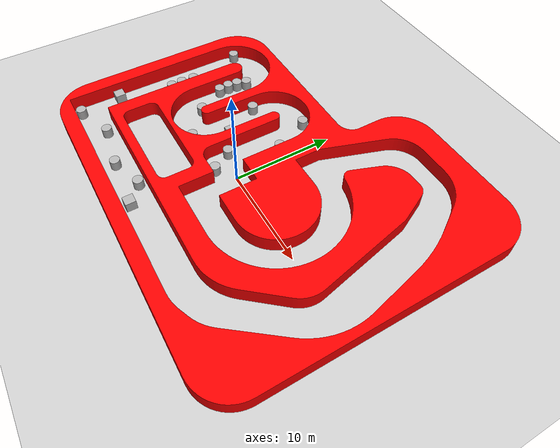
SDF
<sdf version="1.10">
 <world name="empty_world">
  <model name="ground_plane">
   <static>true</static>
   <link name="link">
    <collision name="collision">
     <geometry><plane><normal>0 0 1</normal><size>100 100</size></plane></geometry>
     <surface><friction><ode><mu>1</mu><mu2>1</mu2></ode></friction></surface>
    </collision>
    <visual name="visual">
     <geometry><plane><normal>0 0 1</normal><size>100 100</size></plane></geometry>
     <material>
      <ambient>0.800000012 0.800000012 0.800000012 1</ambient>
      <diffuse>0.800000012 0.800000012 0.800000012 1</diffuse>
      <specular>0.800000012 0.800000012 0.800000012 1</specular>
     </material>
    </visual>
    <inertial>
     <mass>1</mass>
     <inertia><ixx>1</ixx><ixy>0</ixy><ixz>0</ixz><iyy>1</iyy><iyz>0</iyz><izz>1</izz></inertia>
    </inertial>
   </link>
  </model>
  <model name="stl_maze">
   <static>true</static>
   <link name="link">
    <collision name="maze_collision">
     <geometry>
      <mesh>
       <uri>file:///home/juan-londono/Documents/mobileRobotics/mrad_ws_2602_Foxtrot/src/gazebo_2602_foxtrot/worlds/examen1_v2.stl</uri>
       <scale>0.0015 0.0015 0.001</scale>
      </mesh>
     </geometry>
    </collision>
    <visual name="visual">
     <geometry>
      <mesh>
       <uri>file:///home/juan-londono/Documents/mobileRobotics/mrad_ws_2602_Foxtrot/src/gazebo_2602_foxtrot/worlds/examen1_v2.stl</uri>
       <scale>0.0015 0.0015 0.001</scale>
      </mesh>
     </geometry>
     <material><ambient>1 0 0 1</ambient><diffuse>1 0 0 1</diffuse><specular>1 0 0 1</specular></material>
    </visual>
    <inertial>
     <mass>1</mass>
     <inertia><ixx>1</ixx><ixy>0</ixy><ixz>0</ixz><iyy>1</iyy><iyz>0</iyz><izz>1</izz></inertia>
    </inertial>
   </link>
  </model>
  <model name="cylinder">
   <pose>-15.312493324279785 -9.8559398651123047 0.49999899681693183 5.4237981933856964e-19 2.3181649937731231e-23 -1.4941080318111113e-20</pose>
   <link name="cylinder_link">
    <inertial>
     <inertia>
      <ixx>0.14580000000000001</ixx>
      <ixy>0</ixy>
      <ixz>0</ixz>
      <iyy>0.14580000000000001</iyy>
      <iyz>0</iyz>
      <izz>0.125</izz>
     </inertia>
     <mass>1</mass>
    </inertial>
    <collision name="cylinder_collision">
     <geometry><cylinder><radius>0.5</radius><length>1</length></cylinder></geometry>
    </collision>
    <visual name="cylinder_visual">
     <geometry><cylinder><radius>0.5</radius><length>1</length></cylinder></geometry>
     <material>
      <ambient>0.300000012 0.300000012 0.300000012 1</ambient>
      <diffuse>0.699999988 0.699999988 0.699999988 1</diffuse>
      <specular>1 1 1 1</specular>
     </material>
    </visual>
   </link>
   <static>true</static>
  </model>
  <model name="cylinder_0">
   <pose>-11.220121328600436 5.9150393099316156 0.49999943342976871 -1.3307943374031395e-08 5.3249000792590592e-09 0.24168083264871357</pose>
   <link name="cylinder_link">
    <inertial>
     <inertia>
      <ixx>0.14580000000000001</ixx>
      <ixy>0</ixy>
      <ixz>0</ixz>
      <iyy>0.14580000000000001</iyy>
      <iyz>0</iyz>
      <izz>0.125</izz>
     </inertia>
     <mass>1</mass>
    </inertial>
    <collision name="cylinder_collision">
     <geometry><cylinder><radius>0.5</radius><length>1</length></cylinder></geometry>
    </collision>
    <visual name="cylinder_visual">
     <geometry><cylinder><radius>0.5</radius><length>1</length></cylinder></geometry>
     <material>
      <ambient>0.300000012 0.300000012 0.300000012 1</ambient>
      <diffuse>0.699999988 0.699999988 0.699999988 1</diffuse>
      <specular>1 1 1 1</specular>
     </material>
    </visual>
   </link>
   <static>true</static>
  </model>
  <model name="cylinder_1">
   <pose>-14.309305706024755 2.2093379274785914 0.49999942638036005 3.0199189997714729e-19 2.6338621106579318e-19 -7.1983061060248519e-21</pose>
   <link name="cylinder_link">
    <inertial>
     <inertia>
      <ixx>0.14580000000000001</ixx>
      <ixy>0</ixy>
      <ixz>0</ixz>
      <iyy>0.14580000000000001</iyy>
      <iyz>0</iyz>
      <izz>0.125</izz>
     </inertia>
     <mass>1</mass>
    </inertial>
    <collision name="cylinder_collision">
     <geometry><cylinder><radius>0.5</radius><length>1</length></cylinder></geometry>
    </collision>
    <visual name="cylinder_visual">
     <geometry><cylinder><radius>0.5</radius><length>1</length></cylinder></geometry>
     <material>
      <ambient>0.300000012 0.300000012 0.300000012 1</ambient>
      <diffuse>0.699999988 0.699999988 0.699999988 1</diffuse>
      <specular>1 1 1 1</specular>
     </material>
    </visual>
   </link>
   <static>true</static>
  </model>
  <model name="cylinder_2">
   <pose>-14.371523885993248 0.88192613458914693 0.49999942638036005 -4.5275263853793139e-21 2.13030619442747e-19 -8.5486022152102886e-21</pose>
   <link name="cylinder_link">
    <inertial>
     <inertia>
      <ixx>0.14580000000000001</ixx>
      <ixy>0</ixy>
      <ixz>0</ixz>
      <iyy>0.14580000000000001</iyy>
      <iyz>0</iyz>
      <izz>0.125</izz>
     </inertia>
     <mass>1</mass>
    </inertial>
    <collision name="cylinder_collision">
     <geometry><cylinder><radius>0.5</radius><length>1</length></cylinder></geometry>
    </collision>
    <visual name="cylinder_visual">
     <geometry><cylinder><radius>0.5</radius><length>1</length></cylinder></geometry>
     <material>
      <ambient>0.300000012 0.300000012 0.300000012 1</ambient>
      <diffuse>0.699999988 0.699999988 0.699999988 1</diffuse>
      <specular>1 1 1 1</specular>
     </material>
    </visual>
   </link>
   <static>true</static>
  </model>
  <model name="cylinder_3">
   <pose>-11.344564438082452 4.9228125736940616 0.49999943456472545 2.0714131400809861e-08 -7.5706134078639414e-10 0.023803864057548134</pose>
   <link name="cylinder_link">
    <inertial>
     <inertia>
      <ixx>0.14580000000000001</ixx>
      <ixy>0</ixy>
      <ixz>0</ixz>
      <iyy>0.14580000000000001</iyy>
      <iyz>0</iyz>
      <izz>0.125</izz>
     </inertia>
     <mass>1</mass>
    </inertial>
    <collision name="cylinder_collision">
     <geometry><cylinder><radius>0.5</radius><length>1</length></cylinder></geometry>
    </collision>
    <visual name="cylinder_visual">
     <geometry><cylinder><radius>0.5</radius><length>1</length></cylinder></geometry>
     <material>
      <ambient>0.300000012 0.300000012 0.300000012 1</ambient>
      <diffuse>0.699999988 0.699999988 0.699999988 1</diffuse>
      <specular>1 1 1 1</specular>
     </material>
    </visual>
   </link>
   <static>true</static>
  </model>
  <model name="cylinder_4">
   <pose>-10.904389818685567 6.8742585789667174 0.49999942638036005 4.188353422382012e-19 -1.5833142423400404e-19 -2.1644949924063761e-20</pose>
   <link name="cylinder_link">
    <inertial>
     <inertia>
      <ixx>0.14580000000000001</ixx>
      <ixy>0</ixy>
      <ixz>0</ixz>
      <iyy>0.14580000000000001</iyy>
      <iyz>0</iyz>
      <izz>0.125</izz>
     </inertia>
     <mass>1</mass>
    </inertial>
    <collision name="cylinder_collision">
     <geometry><cylinder><radius>0.5</radius><length>1</length></cylinder></geometry>
    </collision>
    <visual name="cylinder_visual">
     <geometry><cylinder><radius>0.5</radius><length>1</length></cylinder></geometry>
     <material>
      <ambient>0.300000012 0.300000012 0.300000012 1</ambient>
      <diffuse>0.699999988 0.699999988 0.699999988 1</diffuse>
      <specular>1 1 1 1</specular>
     </material>
    </visual>
   </link>
   <static>true</static>
  </model>
  <model name="cylinder_5">
   <pose>-11.256412322778504 3.8866658582086773 0.49999942638036005 1.8894495704477277e-19 2.0637947121385104e-19 -5.7735176003567751e-21</pose>
   <link name="cylinder_link">
    <inertial>
     <inertia>
      <ixx>0.14580000000000001</ixx>
      <ixy>0</ixy>
      <ixz>0</ixz>
      <iyy>0.14580000000000001</iyy>
      <iyz>0</iyz>
      <izz>0.125</izz>
     </inertia>
     <mass>1</mass>
    </inertial>
    <collision name="cylinder_collision">
     <geometry><cylinder><radius>0.5</radius><length>1</length></cylinder></geometry>
    </collision>
    <visual name="cylinder_visual">
     <geometry><cylinder><radius>0.5</radius><length>1</length></cylinder></geometry>
     <material>
      <ambient>0.300000012 0.300000012 0.300000012 1</ambient>
      <diffuse>0.699999988 0.699999988 0.699999988 1</diffuse>
      <specular>1 1 1 1</specular>
     </material>
    </visual>
   </link>
   <static>true</static>
  </model>
  <model name="cylinder_6">
   <pose>-14.346395967900598 -0.28805790901506301 0.49999942638036005 1.1523544816387847e-19 2.5988322500725114e-20 4.3176802434931151e-21</pose>
   <link name="cylinder_link">
    <inertial>
     <inertia>
      <ixx>0.14580000000000001</ixx>
      <ixy>0</ixy>
      <ixz>0</ixz>
      <iyy>0.14580000000000001</iyy>
      <iyz>0</iyz>
      <izz>0.125</izz>
     </inertia>
     <mass>1</mass>
    </inertial>
    <collision name="cylinder_collision">
     <geometry><cylinder><radius>0.5</radius><length>1</length></cylinder></geometry>
    </collision>
    <visual name="cylinder_visual">
     <geometry><cylinder><radius>0.5</radius><length>1</length></cylinder></geometry>
     <material>
      <ambient>0.300000012 0.300000012 0.300000012 1</ambient>
      <diffuse>0.699999988 0.699999988 0.699999988 1</diffuse>
      <specular>1 1 1 1</specular>
     </material>
    </visual>
   </link>
   <static>true</static>
  </model>
  <model name="cylinder_7">
   <pose>-11.460442190247441 -8.4948276412933321 0.49999942638036005 3.3291049749848278e-19 -3.721451360970546e-19 -1.9370175130206356e-20</pose>
   <link name="cylinder_link">
    <inertial>
     <inertia>
      <ixx>0.14580000000000001</ixx>
      <ixy>0</ixy>
      <ixz>0</ixz>
      <iyy>0.14580000000000001</iyy>
      <iyz>0</iyz>
      <izz>0.125</izz>
     </inertia>
     <mass>1</mass>
    </inertial>
    <collision name="cylinder_collision">
     <geometry><cylinder><radius>0.5</radius><length>1</length></cylinder></geometry>
    </collision>
    <visual name="cylinder_visual">
     <geometry><cylinder><radius>0.5</radius><length>1</length></cylinder></geometry>
     <material>
      <ambient>0.300000012 0.300000012 0.300000012 1</ambient>
      <diffuse>0.699999988 0.699999988 0.699999988 1</diffuse>
      <specular>1 1 1 1</specular>
     </material>
    </visual>
   </link>
   <static>true</static>
  </model>
  <model name="cylinder_8">
   <pose>-7.0345263231713684 -9.2360728776802201 0.49999942638036005 1.2820895090300494e-19 -1.5635693902696234e-20 -4.4822749101295984e-21</pose>
   <link name="cylinder_link">
    <inertial>
     <inertia>
      <ixx>0.14580000000000001</ixx>
      <ixy>0</ixy>
      <ixz>0</ixz>
      <iyy>0.14580000000000001</iyy>
      <iyz>0</iyz>
      <izz>0.125</izz>
     </inertia>
     <mass>1</mass>
    </inertial>
    <collision name="cylinder_collision">
     <geometry><cylinder><radius>0.5</radius><length>1</length></cylinder></geometry>
    </collision>
    <visual name="cylinder_visual">
     <geometry><cylinder><radius>0.5</radius><length>1</length></cylinder></geometry>
     <material>
      <ambient>0.300000012 0.300000012 0.300000012 1</ambient>
      <diffuse>0.699999988 0.699999988 0.699999988 1</diffuse>
      <specular>1 1 1 1</specular>
     </material>
    </visual>
   </link>
   <static>true</static>
  </model>
  <model name="cylinder_9">
   <pose>-3.683306174393755 -8.2125394381554617 0.49999942638036005 3.4153387818466797e-19 9.7279937756639807e-20 -2.5254317762133637e-20</pose>
   <link name="cylinder_link">
    <inertial>
     <inertia>
      <ixx>0.14580000000000001</ixx>
      <ixy>0</ixy>
      <ixz>0</ixz>
      <iyy>0.14580000000000001</iyy>
      <iyz>0</iyz>
      <izz>0.125</izz>
     </inertia>
     <mass>1</mass>
    </inertial>
    <collision name="cylinder_collision">
     <geometry><cylinder><radius>0.5</radius><length>1</length></cylinder></geometry>
    </collision>
    <visual name="cylinder_visual">
     <geometry><cylinder><radius>0.5</radius><length>1</length></cylinder></geometry>
     <material>
      <ambient>0.300000012 0.300000012 0.300000012 1</ambient>
      <diffuse>0.699999988 0.699999988 0.699999988 1</diffuse>
      <specular>1 1 1 1</specular>
     </material>
    </visual>
   </link>
   <static>true</static>
  </model>
  <model name="box">
   <pose>-1.9071319246755554 -9.7175234732304752 0.49999999990199806 6.2287739151293738e-22 9.3279666454713669e-22 -3.6315533669320137e-22</pose>
   <link name="box_link">
    <inertial>
     <inertia><ixx>0.16666</ixx><ixy>0</ixy><ixz>0</ixz><iyy>0.16666</iyy><iyz>0</iyz><izz>0.16666</izz></inertia>
     <mass>1</mass>
    </inertial>
    <collision name="box_collision"><geometry><box><size>1 1 1</size></box></geometry></collision>
    <visual name="box_visual">
     <geometry><box><size>1 1 1</size></box></geometry>
     <material>
      <ambient>0.300000012 0.300000012 0.300000012 1</ambient>
      <diffuse>0.699999988 0.699999988 0.699999988 1</diffuse>
      <specular>1 1 1 1</specular>
     </material>
    </visual>
   </link>
   <static>true</static>
  </model>
  <model name="cylinder_22">
   <pose>-2.9410225842770892 0.64228280854775122 0.49999942638036005 -1.3027027148216392e-19 2.0462735067133731e-19 -2.6248420183831478e-20</pose>
   <link name="cylinder_link">
    <inertial>
     <inertia>
      <ixx>0.14580000000000001</ixx>
      <ixy>0</ixy>
      <ixz>0</ixz>
      <iyy>0.14580000000000001</iyy>
      <iyz>0</iyz>
      <izz>0.125</izz>
     </inertia>
     <mass>1</mass>
    </inertial>
    <collision name="cylinder_collision">
     <geometry><cylinder><radius>0.5</radius><length>1</length></cylinder></geometry>
    </collision>
    <visual name="cylinder_visual">
     <geometry><cylinder><radius>0.5</radius><length>1</length></cylinder></geometry>
     <material>
      <ambient>0.300000012 0.300000012 0.300000012 1</ambient>
      <diffuse>0.699999988 0.699999988 0.699999988 1</diffuse>
      <specular>1 1 1 1</specular>
     </material>
    </visual>
   </link>
   <static>true</static>
  </model>
  <model name="cylinder_23">
   <pose>-1.6667408593252109 -1.3843994777020932 0.49999942638036005 3.133118760708088e-19 1.6925196853596164e-19 4.364467158204328e-22</pose>
   <link name="cylinder_link">
    <inertial>
     <inertia>
      <ixx>0.14580000000000001</ixx>
      <ixy>0</ixy>
      <ixz>0</ixz>
      <iyy>0.14580000000000001</iyy>
      <iyz>0</iyz>
      <izz>0.125</izz>
     </inertia>
     <mass>1</mass>
    </inertial>
    <collision name="cylinder_collision">
     <geometry><cylinder><radius>0.5</radius><length>1</length></cylinder></geometry>
    </collision>
    <visual name="cylinder_visual">
     <geometry><cylinder><radius>0.5</radius><length>1</length></cylinder></geometry>
     <material>
      <ambient>0.300000012 0.300000012 0.300000012 1</ambient>
      <diffuse>0.699999988 0.699999988 0.699999988 1</diffuse>
      <specular>1 1 1 1</specular>
     </material>
    </visual>
   </link>
   <static>true</static>
  </model>
  <model name="cylinder_24">
   <pose>-1.0945646843278947 5.2774217602744713 0.49999943806461272 -5.3251462718800928e-19 -2.6581675314841199e-08 -1.9796437882870038e-17</pose>
   <link name="cylinder_link">
    <inertial>
     <inertia>
      <ixx>0.14580000000000001</ixx>
      <ixy>0</ixy>
      <ixz>0</ixz>
      <iyy>0.14580000000000001</iyy>
      <iyz>0</iyz>
      <izz>0.125</izz>
     </inertia>
     <mass>1</mass>
    </inertial>
    <collision name="cylinder_collision">
     <geometry><cylinder><radius>0.5</radius><length>1</length></cylinder></geometry>
    </collision>
    <visual name="cylinder_visual">
     <geometry><cylinder><radius>0.5</radius><length>1</length></cylinder></geometry>
     <material>
      <ambient>0.300000012 0.300000012 0.300000012 1</ambient>
      <diffuse>0.699999988 0.699999988 0.699999988 1</diffuse>
      <specular>1 1 1 1</specular>
     </material>
    </visual>
   </link>
   <static>true</static>
  </model>
  <model name="cylinder_25">
   <pose>-2.7701914774246785 8.9399327651453788 0.49999942638036005 3.3632680832452562e-19 -2.0541826809127662e-19 -1.2989026028509653e-20</pose>
   <link name="cylinder_link">
    <inertial>
     <inertia>
      <ixx>0.14580000000000001</ixx>
      <ixy>0</ixy>
      <ixz>0</ixz>
      <iyy>0.14580000000000001</iyy>
      <iyz>0</iyz>
      <izz>0.125</izz>
     </inertia>
     <mass>1</mass>
    </inertial>
    <collision name="cylinder_collision">
     <geometry><cylinder><radius>0.5</radius><length>1</length></cylinder></geometry>
    </collision>
    <visual name="cylinder_visual">
     <geometry><cylinder><radius>0.5</radius><length>1</length></cylinder></geometry>
     <material>
      <ambient>0.300000012 0.300000012 0.300000012 1</ambient>
      <diffuse>0.699999988 0.699999988 0.699999988 1</diffuse>
      <specular>1 1 1 1</specular>
     </material>
    </visual>
   </link>
   <static>true</static>
  </model>
  <model name="cylinder_26">
   <pose>-7.142416657495124 5.6169112196638524 0.49999942638036005 2.9155868855677745e-19 5.2251785893331601e-20 -1.927106765635976e-20</pose>
   <link name="cylinder_link">
    <inertial>
     <inertia>
      <ixx>0.14580000000000001</ixx>
      <ixy>0</ixy>
      <ixz>0</ixz>
      <iyy>0.14580000000000001</iyy>
      <iyz>0</iyz>
      <izz>0.125</izz>
     </inertia>
     <mass>1</mass>
    </inertial>
    <collision name="cylinder_collision">
     <geometry><cylinder><radius>0.5</radius><length>1</length></cylinder></geometry>
    </collision>
    <visual name="cylinder_visual">
     <geometry><cylinder><radius>0.5</radius><length>1</length></cylinder></geometry>
     <material>
      <ambient>0.300000012 0.300000012 0.300000012 1</ambient>
      <diffuse>0.699999988 0.699999988 0.699999988 1</diffuse>
      <specular>1 1 1 1</specular>
     </material>
    </visual>
   </link>
   <static>true</static>
  </model>
  <model name="box_4">
   <pose>-5.2195641225095368 2.1318541576614751 0.49999999213490343 2.7656198608327053e-14 -1.1841016062705302e-08 7.7487823212153052e-08</pose>
   <link name="box_link">
    <inertial>
     <inertia><ixx>0.16666</ixx><ixy>0</ixy><ixz>0</ixz><iyy>0.16666</iyy><iyz>0</iyz><izz>0.16666</izz></inertia>
     <mass>1</mass>
    </inertial>
    <collision name="box_collision"><geometry><box><size>1 1 1</size></box></geometry></collision>
    <visual name="box_visual">
     <geometry><box><size>1 1 1</size></box></geometry>
     <material>
      <ambient>0.300000012 0.300000012 0.300000012 1</ambient>
      <diffuse>0.699999988 0.699999988 0.699999988 1</diffuse>
      <specular>1 1 1 1</specular>
     </material>
    </visual>
   </link>
   <static>true</static>
  </model>
  <model name="cylinder_27">
   <pose>-6.5943259253220976 -1.4365735029918119 0.49999942638036005 -1.4219933043614457e-19 -1.8070960645560931e-19 9.131250210680452e-21</pose>
   <link name="cylinder_link">
    <inertial>
     <inertia>
      <ixx>0.14580000000000001</ixx>
      <ixy>0</ixy>
      <ixz>0</ixz>
      <iyy>0.14580000000000001</iyy>
      <iyz>0</iyz>
      <izz>0.125</izz>
     </inertia>
     <mass>1</mass>
    </inertial>
    <collision name="cylinder_collision">
     <geometry><cylinder><radius>0.5</radius><length>1</length></cylinder></geometry>
    </collision>
    <visual name="cylinder_visual">
     <geometry><cylinder><radius>0.5</radius><length>1</length></cylinder></geometry>
     <material>
      <ambient>0.300000012 0.300000012 0.300000012 1</ambient>
      <diffuse>0.699999988 0.699999988 0.699999988 1</diffuse>
      <specular>1 1 1 1</specular>
     </material>
    </visual>
   </link>
   <static>true</static>
  </model>
  <model name="cylinder_28">
   <pose>-9.5793604877523535 1.0214281067197923 0.49999942638036005 1.4109013438538487e-19 2.6669612418829422e-21 -8.6567011098910536e-21</pose>
   <link name="cylinder_link">
    <inertial>
     <inertia>
      <ixx>0.14580000000000001</ixx>
      <ixy>0</ixy>
      <ixz>0</ixz>
      <iyy>0.14580000000000001</iyy>
      <iyz>0</iyz>
      <izz>0.125</izz>
     </inertia>
     <mass>1</mass>
    </inertial>
    <collision name="cylinder_collision">
     <geometry><cylinder><radius>0.5</radius><length>1</length></cylinder></geometry>
    </collision>
    <visual name="cylinder_visual">
     <geometry><cylinder><radius>0.5</radius><length>1</length></cylinder></geometry>
     <material>
      <ambient>0.300000012 0.300000012 0.300000012 1</ambient>
      <diffuse>0.699999988 0.699999988 0.699999988 1</diffuse>
      <specular>1 1 1 1</specular>
     </material>
    </visual>
   </link>
   <static>true</static>
  </model>
  <model name="box_5">
   <pose>-15.72167824901001 -5.6165687763955017 0.49999999990199806 8.1459159541918042e-22 -1.9137820996908089e-21 -2.5957792534099796e-22</pose>
   <link name="box_link">
    <inertial>
     <inertia><ixx>0.16666</ixx><ixy>0</ixy><ixz>0</ixz><iyy>0.16666</iyy><iyz>0</iyz><izz>0.16666</izz></inertia>
     <mass>1</mass>
    </inertial>
    <collision name="box_collision"><geometry><box><size>1 1 1</size></box></geometry></collision>
    <visual name="box_visual">
     <geometry><box><size>1 1 1</size></box></geometry>
     <material>
      <ambient>0.300000012 0.300000012 0.300000012 1</ambient>
      <diffuse>0.699999988 0.699999988 0.699999988 1</diffuse>
      <specular>1 1 1 1</specular>
     </material>
    </visual>
   </link>
   <static>true</static>
  </model>
  <model name="cylinder_31">
   <pose>-15.689467581294249 7.8274260723013791 0.50000002505304608 4.628066828717937e-08 4.6307962596369006e-08 0.012721727759545078</pose>
   <link name="cylinder_link">
    <inertial>
     <inertia>
      <ixx>0.14580000000000001</ixx>
      <ixy>0</ixy>
      <ixz>0</ixz>
      <iyy>0.14580000000000001</iyy>
      <iyz>0</iyz>
      <izz>0.125</izz>
     </inertia>
     <mass>1</mass>
    </inertial>
    <collision name="cylinder_collision">
     <geometry><cylinder><radius>0.5</radius><length>1</length></cylinder></geometry>
    </collision>
    <visual name="cylinder_visual">
     <geometry><cylinder><radius>0.5</radius><length>1</length></cylinder></geometry>
     <material>
      <ambient>0.300000012 0.300000012 0.300000012 1</ambient>
      <diffuse>0.699999988 0.699999988 0.699999988 1</diffuse>
      <specular>1 1 1 1</specular>
     </material>
    </visual>
   </link>
   <static>true</static>
  </model>
 </world>
</sdf>
